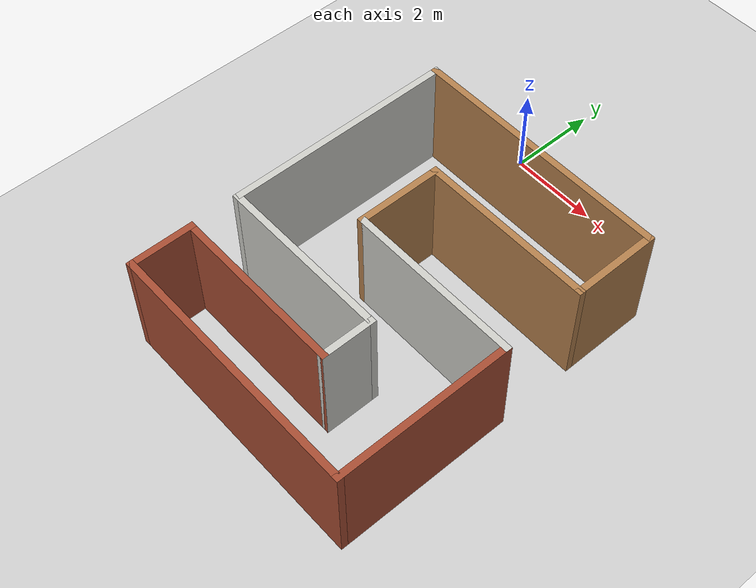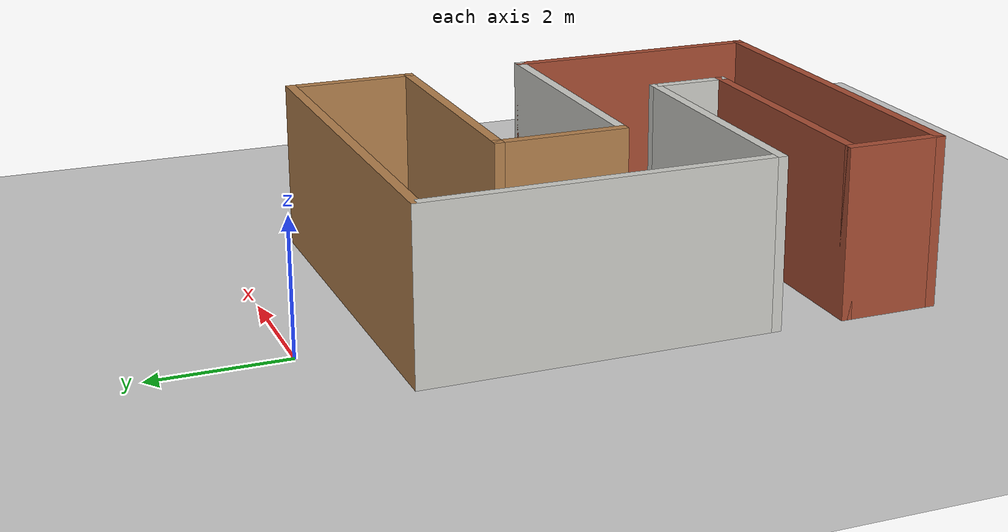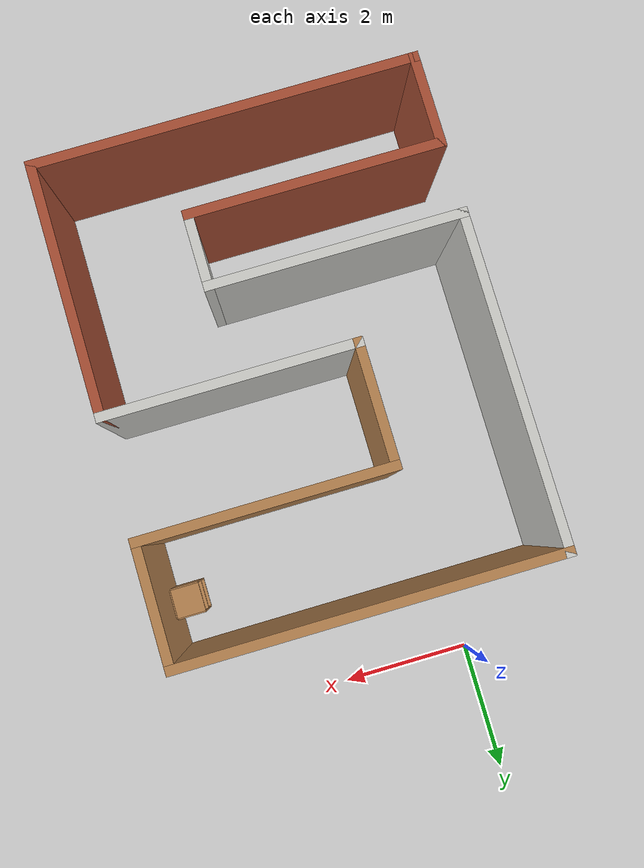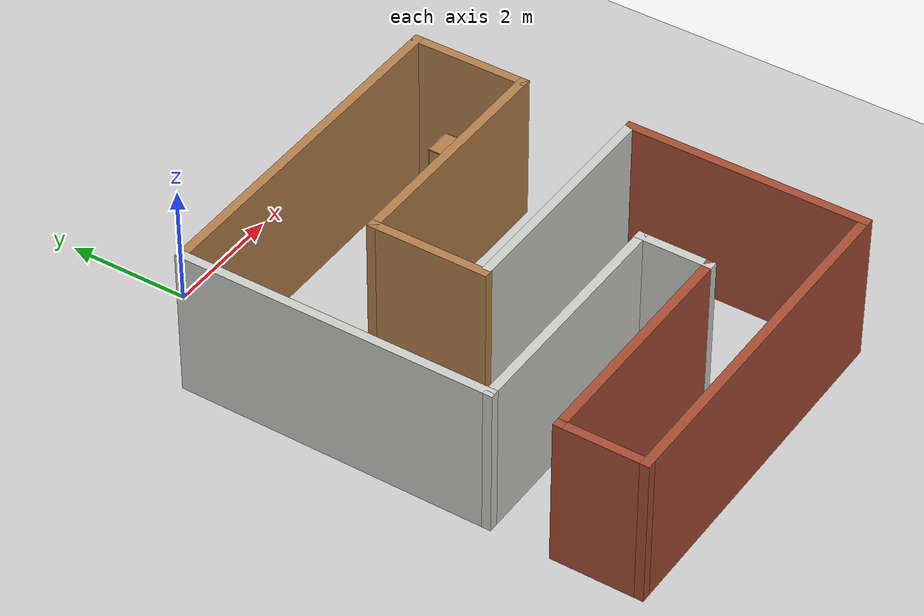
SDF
<sdf version="1.6">
 <world name="default">
  <light name="sun" type="directional">
   <pose>0 0 10 0 -0 0</pose>
   <diffuse>0.8 0.8 0.8 1</diffuse>
   <specular>0.2 0.2 0.2 1</specular>
   <attenuation>
    <range>1000</range>
    <constant>0.9</constant>
    <linear>0.01</linear>
    <quadratic>0.001</quadratic>
   </attenuation>
   <direction>-0.5 0.1 -0.9</direction>
  </light>
  <model name="ground_plane">
   <static>1</static>
   <link name="link">
    <collision name="collision">
     <geometry><plane><normal>0 0 1</normal><size>100 100</size></plane></geometry>
     <surface>
      <contact><collide_bitmask>65535</collide_bitmask></contact>
      <friction><ode><mu>100</mu><mu2>50</mu2></ode></friction>
     </surface>
    </collision>
    <visual name="visual">
     <cast_shadows>0</cast_shadows>
     <geometry><plane><normal>0 0 1</normal><size>100 100</size></plane></geometry>
     <material>
      <script><uri>file://media/materials/scripts/gazebo.material</uri><name>Gazebo/Grey</name></script>
     </material>
    </visual>
   </link>
  </model>
  <gravity>0 0 -9.8</gravity>
  <magnetic_field>6e-06 2.3e-05 -4.2e-05</magnetic_field>
  <atmosphere type="adiabatic"/>
  <physics name="default_physics" default="0" type="ode">
   <max_step_size>0.001</max_step_size>
   <real_time_factor>1</real_time_factor>
   <real_time_update_rate>1000</real_time_update_rate>
  </physics>
  <scene><ambient>0.4 0.4 0.4 1</ambient><background>0.7 0.7 0.7 1</background><shadows>1</shadows></scene>
  <spherical_coordinates>
   <surface_model>EARTH_WGS84</surface_model>
   <latitude_deg>0</latitude_deg>
   <longitude_deg>0</longitude_deg>
   <elevation>0</elevation>
   <heading_deg>0</heading_deg>
  </spherical_coordinates>
  <model name="S_room">
   <pose>1.425 -4.995 0 0 -0 0</pose>
   <link name="Wall_0">
    <collision name="Wall_0_Collision">
     <geometry><box><size>6 0.15 2.5</size></box></geometry>
     <pose>0 0 1.25 0 -0 0</pose>
    </collision>
    <visual name="Wall_0_Visual">
     <pose>0 0 1.25 0 -0 0</pose>
     <geometry><box><size>6 0.15 2.5</size></box></geometry>
     <material>
      <script><uri>file://media/materials/scripts/gazebo.material</uri><name>Gazebo/Wood</name></script>
      <ambient>1 1 1 1</ambient>
     </material>
     <meta><layer>0</layer></meta>
    </visual>
    <pose>0 3.775 0 0 -0 0</pose>
   </link>
   <link name="Wall_1">
    <collision name="Wall_1_Collision">
     <geometry><box><size>2 0.15 2.5</size></box></geometry>
     <pose>0 0 1.25 0 -0 0</pose>
    </collision>
    <visual name="Wall_1_Visual">
     <pose>0 0 1.25 0 -0 0</pose>
     <geometry><box><size>2 0.15 2.5</size></box></geometry>
     <material>
      <script><uri>file://media/materials/scripts/gazebo.material</uri><name>Gazebo/Wood</name></script>
      <ambient>1 1 1 1</ambient>
     </material>
     <meta><layer>0</layer></meta>
    </visual>
    <pose>2.925 2.85 0 0 0 -1.5708</pose>
   </link>
   <link name="Wall_10">
    <collision name="Wall_10_Collision">
     <geometry><box><size>4 0.15 2.5</size></box></geometry>
     <pose>0 0 1.25 0 -0 0</pose>
    </collision>
    <visual name="Wall_10_Visual">
     <pose>0 0 1.25 0 -0 0</pose>
     <geometry><box><size>4 0.15 2.5</size></box></geometry>
     <material>
      <script><uri>file://media/materials/scripts/gazebo.material</uri><name>Gazebo/CeilingTiled</name></script>
      <ambient>1 1 1 1</ambient>
     </material>
     <meta><layer>0</layer></meta>
    </visual>
    <pose>-1 -1.325 0 0 -0 3.14159</pose>
   </link>
   <link name="Wall_11">
    <collision name="Wall_11_Collision">
     <geometry><box><size>5.25 0.15 2.5</size></box></geometry>
     <pose>0 0 1.25 0 -0 0</pose>
    </collision>
    <visual name="Wall_11_Visual">
     <pose>0 0 1.25 0 -0 0</pose>
     <geometry><box><size>5.25 0.15 2.5</size></box></geometry>
     <material>
      <script><uri>file://media/materials/scripts/gazebo.material</uri><name>Gazebo/CeilingTiled</name></script>
      <ambient>1 1 1 1</ambient>
     </material>
     <meta><layer>0</layer></meta>
    </visual>
    <pose>-2.925 1.225 0 0 -0 1.5708</pose>
   </link>
   <link name="Wall_2">
    <collision name="Wall_2_Collision">
     <geometry><box><size>4 0.15 2.5</size></box></geometry>
     <pose>0 0 1.25 0 -0 0</pose>
    </collision>
    <visual name="Wall_2_Visual">
     <pose>0 0 1.25 0 -0 0</pose>
     <geometry><box><size>4 0.15 2.5</size></box></geometry>
     <material>
      <script><uri>file://media/materials/scripts/gazebo.material</uri><name>Gazebo/Wood</name></script>
      <ambient>1 1 1 1</ambient>
     </material>
     <meta><layer>0</layer></meta>
    </visual>
    <pose>1 1.925 0 0 -0 3.14159</pose>
   </link>
   <link name="Wall_3">
    <collision name="Wall_3_Collision">
     <geometry><box><size>2 0.15 2.5</size></box></geometry>
     <pose>0 0 1.25 0 -0 0</pose>
    </collision>
    <visual name="Wall_3_Visual">
     <pose>0 0 1.25 0 -0 0</pose>
     <geometry><box><size>2 0.15 2.5</size></box></geometry>
     <material>
      <script><uri>file://media/materials/scripts/gazebo.material</uri><name>Gazebo/Wood</name></script>
      <ambient>1 1 1 1</ambient>
     </material>
     <meta><layer>0</layer></meta>
    </visual>
    <pose>-0.925 1 0 0 0 -1.5708</pose>
   </link>
   <link name="Wall_4">
    <collision name="Wall_4_Collision">
     <geometry><box><size>4 0.15 2.5</size></box></geometry>
     <pose>0 0 1.25 0 -0 0</pose>
    </collision>
    <visual name="Wall_4_Visual">
     <pose>0 0 1.25 0 -0 0</pose>
     <geometry><box><size>4 0.15 2.5</size></box></geometry>
     <material>
      <script><uri>file://media/materials/scripts/gazebo.material</uri><name>Gazebo/CeilingTiled</name></script>
      <ambient>1 1 1 1</ambient>
     </material>
     <meta><layer>0</layer></meta>
    </visual>
    <pose>1 0.075 0 0 -0 0</pose>
   </link>
   <link name="Wall_5">
    <collision name="Wall_5_Collision">
     <geometry><box><size>4 0.15 2.5</size></box></geometry>
     <pose>0 0 1.25 0 -0 0</pose>
    </collision>
    <visual name="Wall_5_Visual">
     <pose>0 0 1.25 0 -0 0</pose>
     <geometry><box><size>4 0.15 2.5</size></box></geometry>
     <material>
      <script><uri>file://media/materials/scripts/gazebo.material</uri><name>Gazebo/Bricks</name></script>
      <ambient>1 1 1 1</ambient>
     </material>
     <meta><layer>0</layer></meta>
    </visual>
    <pose>2.925 -1.85 0 0 0 -1.5708</pose>
   </link>
   <link name="Wall_6">
    <collision name="Wall_6_Collision">
     <geometry><box><size>6 0.15 2.5</size></box></geometry>
     <pose>0 0 1.25 0 -0 0</pose>
    </collision>
    <visual name="Wall_6_Visual">
     <pose>0 0 1.25 0 -0 0</pose>
     <geometry><box><size>6 0.15 2.5</size></box></geometry>
     <material>
      <script><uri>file://media/materials/scripts/gazebo.material</uri><name>Gazebo/Bricks</name></script>
      <ambient>1 1 1 1</ambient>
     </material>
     <meta><layer>0</layer></meta>
    </visual>
    <pose>0 -3.775 0 0 -0 3.14159</pose>
   </link>
   <link name="Wall_7">
    <collision name="Wall_7_Collision">
     <geometry><box><size>1.5 0.15 2.5</size></box></geometry>
     <pose>0 0 1.25 0 -0 0</pose>
    </collision>
    <visual name="Wall_7_Visual">
     <pose>0 0 1.25 0 -0 0</pose>
     <geometry><box><size>1.5 0.15 2.5</size></box></geometry>
     <material>
      <script><uri>file://media/materials/scripts/gazebo.material</uri><name>Gazebo/Bricks</name></script>
      <ambient>1 1 1 1</ambient>
     </material>
     <meta><layer>0</layer></meta>
    </visual>
    <pose>-2.925 -3.1 0 0 -0 1.5708</pose>
   </link>
   <link name="Wall_8">
    <collision name="Wall_8_Collision">
     <geometry><box><size>4 0.15 2.5</size></box></geometry>
     <pose>0 0 1.25 0 -0 0</pose>
    </collision>
    <visual name="Wall_8_Visual">
     <pose>0 0 1.25 0 -0 0</pose>
     <geometry><box><size>4 0.15 2.5</size></box></geometry>
     <material>
      <script><uri>file://media/materials/scripts/gazebo.material</uri><name>Gazebo/Bricks</name></script>
      <ambient>1 1 1 1</ambient>
     </material>
     <meta><layer>0</layer></meta>
    </visual>
    <pose>-1 -2.425 0 0 -0 0</pose>
   </link>
   <link name="Wall_9">
    <collision name="Wall_9_Collision">
     <geometry><box><size>1.25 0.15 2.5</size></box></geometry>
     <pose>0 0 1.25 0 -0 0</pose>
    </collision>
    <visual name="Wall_9_Visual">
     <pose>0 0 1.25 0 -0 0</pose>
     <geometry><box><size>1.25 0.15 2.5</size></box></geometry>
     <material>
      <script><uri>file://media/materials/scripts/gazebo.material</uri><name>Gazebo/CeilingTiled</name></script>
      <ambient>1 1 1 1</ambient>
     </material>
     <meta><layer>0</layer></meta>
    </visual>
    <pose>0.925 -1.875 0 0 -0 1.5708</pose>
   </link>
   <static>1</static>
  </model>
  <model name="cabinet">
   <static>1</static>
   <link name="cabinet_bottom_plate">
    <inertial>
     <pose>0 0 -1 0 -0 0</pose>
     <inertia><ixx>2.05</ixx><ixy>0</ixy><ixz>0</ixz><iyy>2.05</iyy><iyz>0</iyz><izz>2.05</izz></inertia>
     <mass>25</mass>
    </inertial>
    <collision name="cabinet_bottom_plate_geom">
     <pose>0 0 0.01 0 -0 0</pose>
     <geometry><box><size>0.45 0.45 0.02</size></box></geometry>
    </collision>
    <visual name="cabinet_bottom_plate_geom_visual">
     <pose>0 0 0.01 0 -0 0</pose>
     <geometry><box><size>0.45 0.45 0.02</size></box></geometry>
     <material>
      <script><uri>file://media/materials/scripts/gazebo.material</uri><name>Gazebo/Wood</name></script>
     </material>
    </visual>
    <collision name="cabinet_bottom_plate_geom_cabinet_back_plate">
     <pose>0.235 0 0.51 0 -0 0</pose>
     <geometry><box><size>0.02 0.45 1.02</size></box></geometry>
    </collision>
    <visual name="cabinet_bottom_plate_geom_cabinet_back_plate_visual">
     <pose>0.235 0 0.51 0 -0 0</pose>
     <geometry><box><size>0.02 0.45 1.02</size></box></geometry>
     <material>
      <script><uri>file://media/materials/scripts/gazebo.material</uri><name>Gazebo/Wood</name></script>
     </material>
    </visual>
    <collision name="cabinet_bottom_plate_geom_cabinet_left_plate">
     <pose>0 0.235 0.51 0 -0 0</pose>
     <geometry><box><size>0.45 0.02 1.02</size></box></geometry>
    </collision>
    <visual name="cabinet_bottom_plate_geom_cabinet_left_plate_visual">
     <pose>0 0.235 0.51 0 -0 0</pose>
     <geometry><box><size>0.45 0.02 1.02</size></box></geometry>
     <material>
      <script><uri>file://media/materials/scripts/gazebo.material</uri><name>Gazebo/Wood</name></script>
     </material>
    </visual>
    <collision name="cabinet_bottom_plate_geom_cabinet_middle_plate">
     <pose>0 0 0.51 0 -0 0</pose>
     <geometry><box><size>0.45 0.45 0.02</size></box></geometry>
    </collision>
    <visual name="cabinet_bottom_plate_geom_cabinet_middle_plate_visual">
     <pose>0 0 0.51 0 -0 0</pose>
     <geometry><box><size>0.45 0.45 0.02</size></box></geometry>
     <material>
      <script><uri>file://media/materials/scripts/gazebo.material</uri><name>Gazebo/Wood</name></script>
     </material>
    </visual>
    <collision name="cabinet_bottom_plate_geom_cabinet_right_plate">
     <pose>0 -0.235 0.51 0 -0 0</pose>
     <geometry><box><size>0.45 0.02 1.02</size></box></geometry>
    </collision>
    <visual name="cabinet_bottom_plate_geom_cabinet_right_plate_visual">
     <pose>0 -0.235 0.51 0 -0 0</pose>
     <geometry><box><size>0.45 0.02 1.02</size></box></geometry>
     <material>
      <script><uri>file://media/materials/scripts/gazebo.material</uri><name>Gazebo/Wood</name></script>
     </material>
    </visual>
    <collision name="cabinet_bottom_plate_geom_cabinet_top_plate">
     <pose>0 0 1.01 0 -0 0</pose>
     <geometry><box><size>0.45 0.45 0.02</size></box></geometry>
    </collision>
    <visual name="cabinet_bottom_plate_geom_cabinet_top_plate_visual">
     <pose>0 0 1.01 0 -0 0</pose>
     <geometry><box><size>0.45 0.45 0.02</size></box></geometry>
     <material>
      <script><uri>file://media/materials/scripts/gazebo.material</uri><name>Gazebo/Wood</name></script>
     </material>
    </visual>
   </link>
   <pose>4.03076 -2.01881 0 0 -0 0</pose>
  </model>
 </world>
</sdf>
